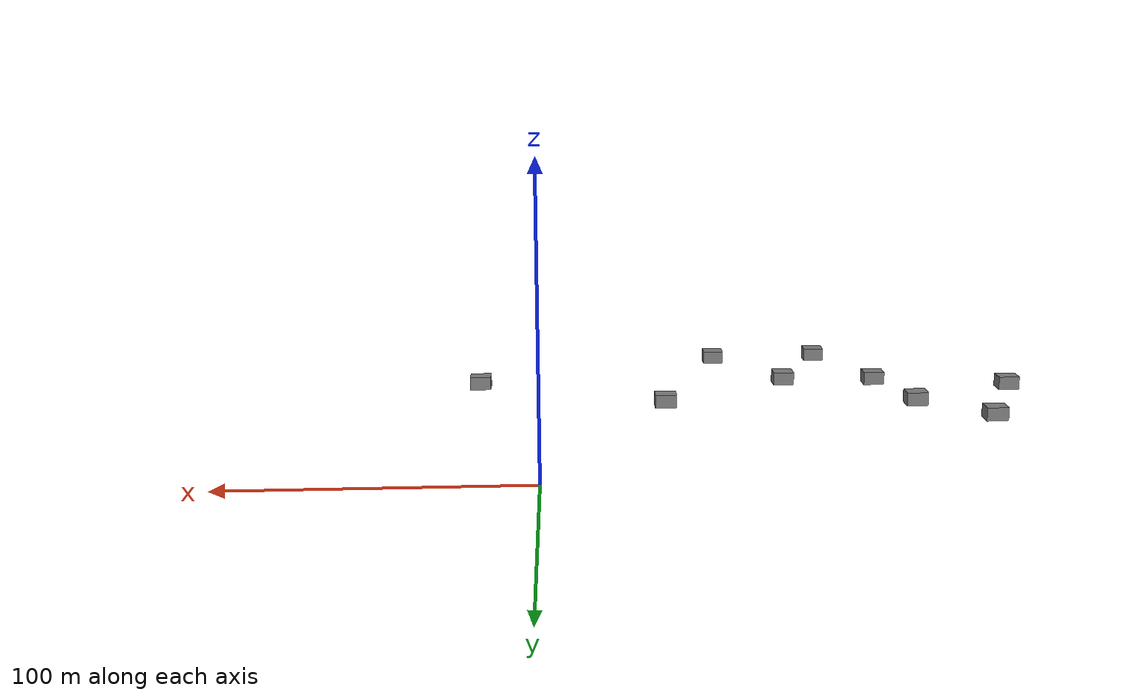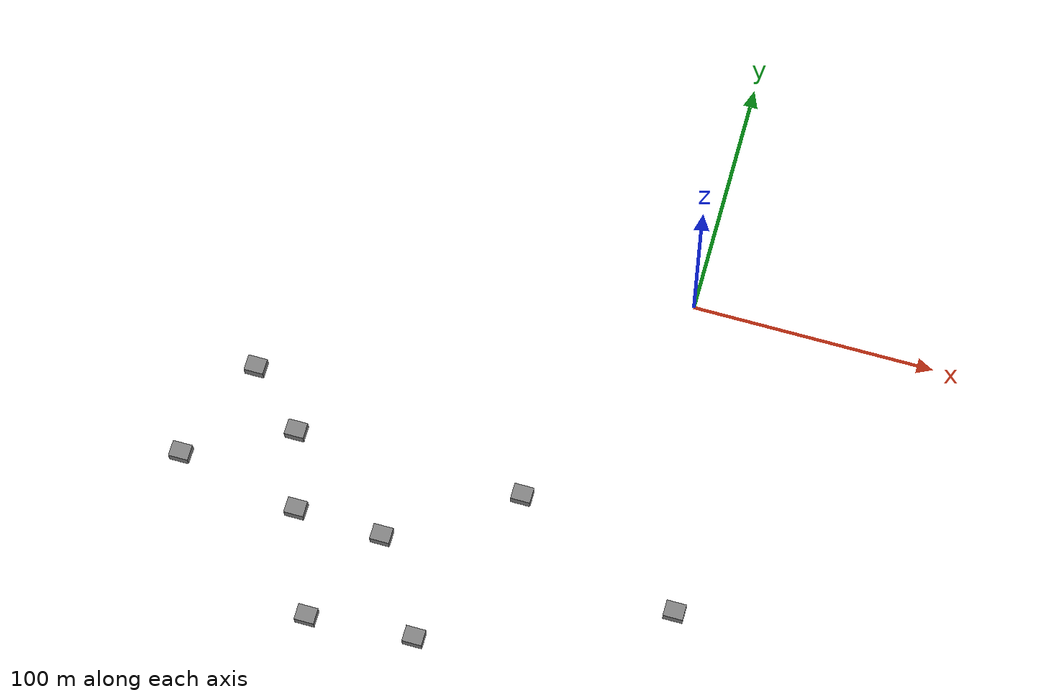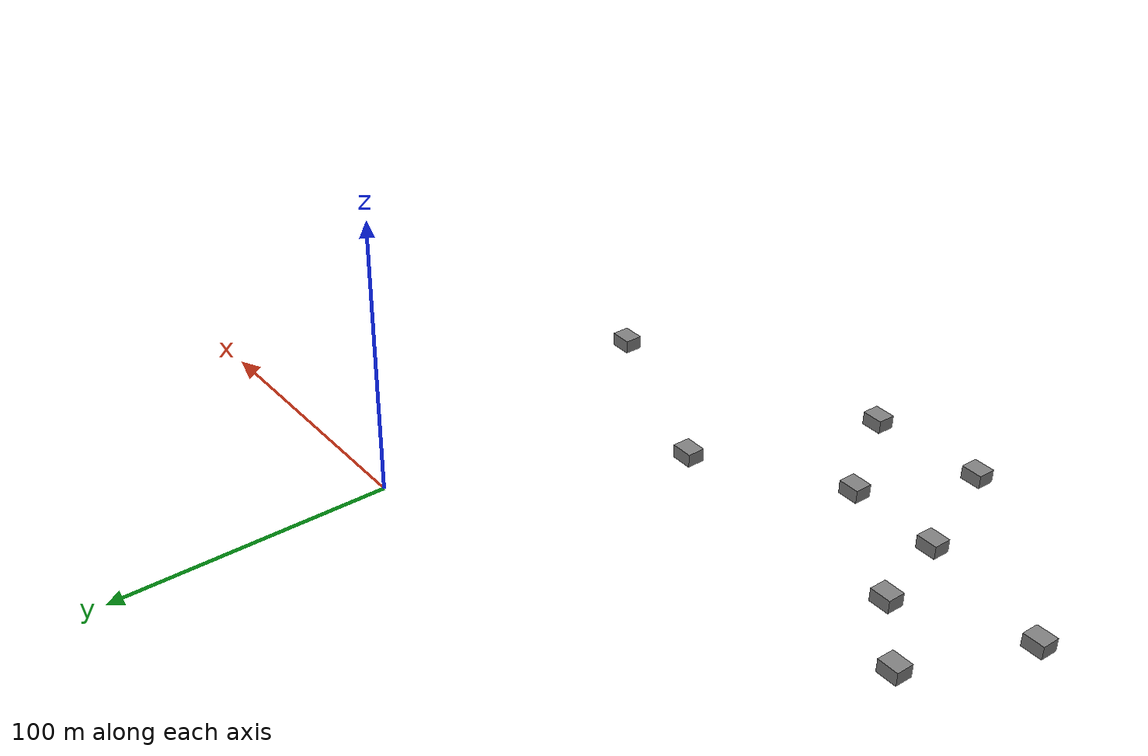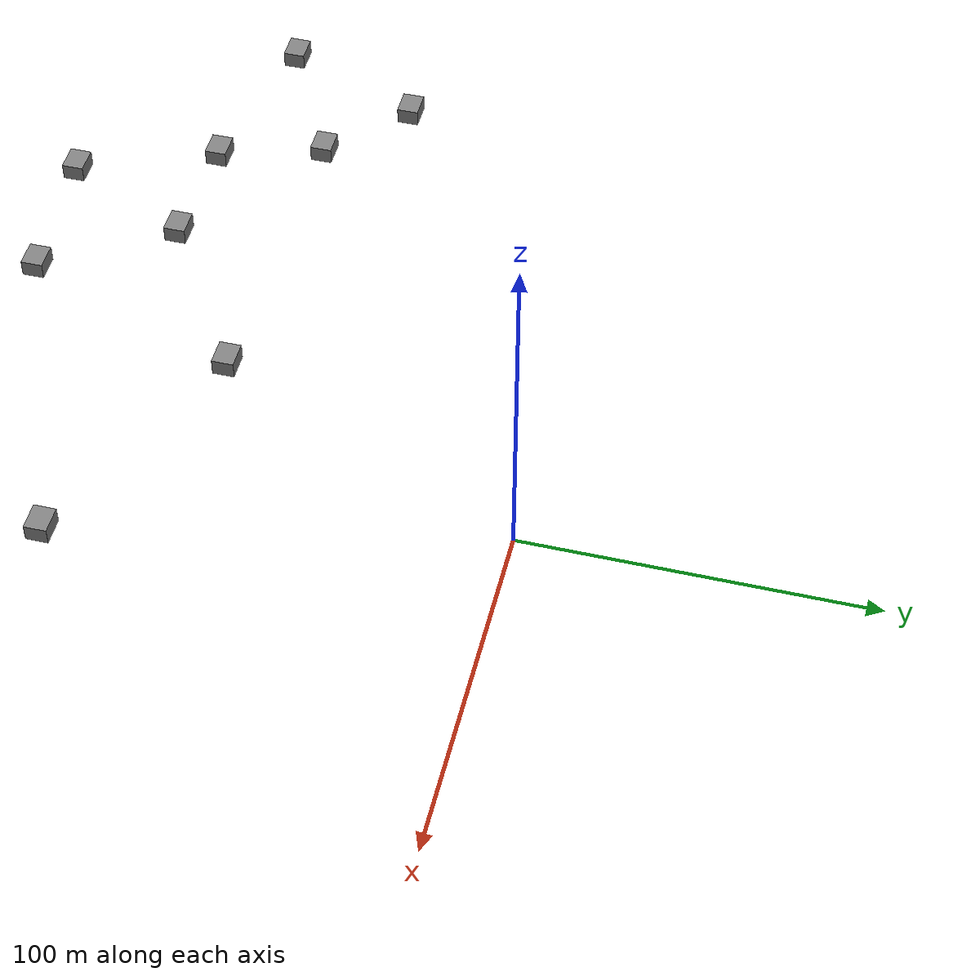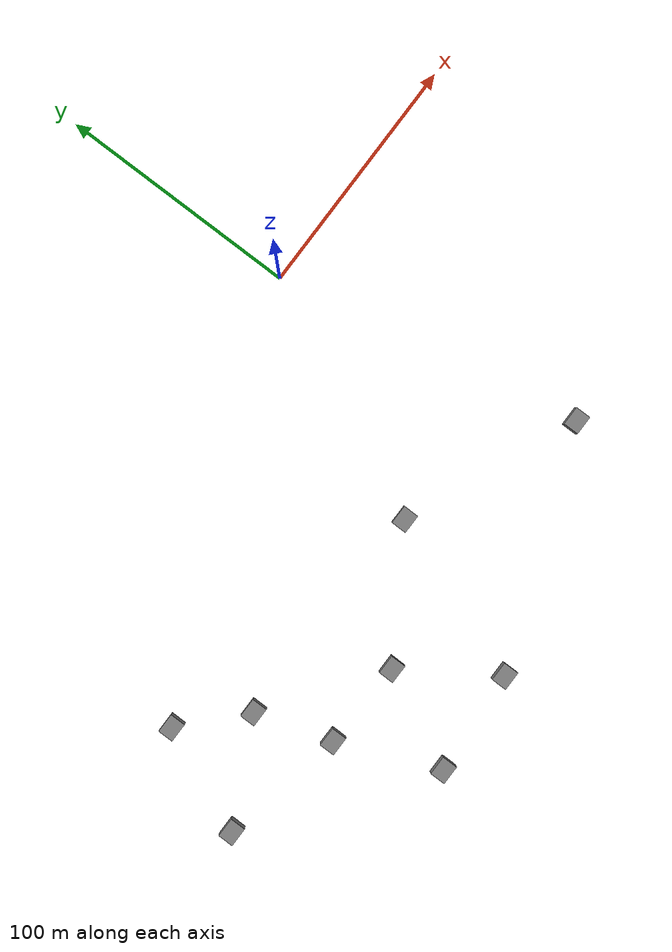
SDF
<sdf version="1.6">
 <world name="default">
  <light name="sun" type="directional">
   <pose>0 0 10 0 -0 0</pose>
   <diffuse>0.8 0.8 0.8 1</diffuse>
   <specular>0.2 0.2 0.2 1</specular>
   <attenuation>
    <range>1000</range>
    <constant>0.9</constant>
    <linear>0.01</linear>
    <quadratic>0.001</quadratic>
   </attenuation>
   <direction>-0.5 0.1 -0.9</direction>
  </light>
  <gravity>0 0 -9.8</gravity>
  <magnetic_field>6e-06 2.3e-05 -4.2e-05</magnetic_field>
  <atmosphere type="adiabatic"/>
  <physics name="default_physics" default="0" type="ode">
   <max_step_size>0.001</max_step_size>
   <real_time_factor>1</real_time_factor>
   <real_time_update_rate>1000</real_time_update_rate>
  </physics>
  <scene>
   <sky><clouds><speed>12</speed></clouds></sky>
   <origin_visual>0</origin_visual>
   <ambient>0.4 0.4 0.4 1</ambient>
   <background>0.7 0.7 0.7 1</background>
   <shadows>1</shadows>
  </scene>
  <audio><device>default</device></audio>
  <spherical_coordinates>
   <surface_model>EARTH_WGS84</surface_model>
   <latitude_deg>0</latitude_deg>
   <longitude_deg>0</longitude_deg>
   <elevation>0</elevation>
   <heading_deg>0</heading_deg>
  </spherical_coordinates>
  <model name="lago">
   <link name="link_0">
    <inertial>
     <mass>1</mass>
     <inertia>
      <ixx>0.166667</ixx>
      <ixy>0</ixy>
      <ixz>0</ixz>
      <iyy>0.166667</iyy>
      <iyz>0</iyz>
      <izz>0.166667</izz>
     </inertia>
    </inertial>
    <visual name="visual">
     <geometry><box><size>0 0 10</size></box></geometry>
     <material>
      <script>
       <uri>model://lago3/materials/scripts</uri>
       <uri>model://lago3/materials/textures</uri>
       <name>vrc/agua</name>
      </script>
     </material>
    </visual>
    <collision name="collision">
     <laser_retro>120</laser_retro>
     <geometry><box><size>0 0 10</size></box></geometry>
     <surface>
      <friction>
       <ode><mu>1</mu><mu2>1</mu2><fdir1>0 0 0</fdir1><slip1>0</slip1><slip2>0</slip2></ode>
       <torsional>
        <coefficient>1</coefficient>
        <patch_radius>0</patch_radius>
        <surface_radius>0</surface_radius>
        <use_patch_radius>1</use_patch_radius>
        <ode><slip>0</slip></ode>
       </torsional>
      </friction>
      <bounce><restitution_coefficient>0</restitution_coefficient><threshold>1e+06</threshold></bounce>
      <contact>
       <collide_without_contact>0</collide_without_contact>
       <collide_without_contact_bitmask>1</collide_without_contact_bitmask>
       <collide_bitmask>1</collide_bitmask>
       <ode>
        <soft_cfm>0</soft_cfm>
        <soft_erp>0.2</soft_erp>
        <kp>1e+13</kp>
        <kd>1</kd>
        <max_vel>0.01</max_vel>
        <min_depth>0</min_depth>
       </ode>
       <bullet>
        <split_impulse>1</split_impulse>
        <split_impulse_penetration_threshold>-0.01</split_impulse_penetration_threshold>
        <soft_cfm>0</soft_cfm>
        <soft_erp>0.2</soft_erp>
        <kp>1e+13</kp>
        <kd>1</kd>
       </bullet>
      </contact>
     </surface>
    </collision>
   </link>
   <static>1</static>
   <pose>0 0 -6.5 0 -0 0</pose>
  </model>
  <model name="camino">
   <link name="link_0">
    <pose>3.1e-05 -8e-06 0 0 -0 0</pose>
    <inertial>
     <mass>1</mass>
     <inertia>
      <ixx>0.166667</ixx>
      <ixy>0</ixy>
      <ixz>0</ixz>
      <iyy>0.166667</iyy>
      <iyz>0</iyz>
      <izz>0.166667</izz>
     </inertia>
    </inertial>
    <visual name="visual">
     <geometry><box><size>8 6.5 5</size></box></geometry>
     <material>
      <script>
       <uri>model://camino/materials/scripts</uri>
       <uri>model://camino/materials/textures</uri>
       <name>vrc/mud</name>
      </script>
      <ambient>0.5 0.5 0.5 1</ambient>
      <diffuse>0.5 0.5 0.5 1</diffuse>
      <specular>0.2 0.2 0.2 1</specular>
      <emissive>0 0 0 1</emissive>
      <shader type="vertex"><normal_map>__default__</normal_map></shader>
     </material>
    </visual>
    <collision name="collision">
     <laser_retro>170</laser_retro>
     <geometry><box><size>8 8 5</size></box></geometry>
     <surface>
      <friction>
       <ode><mu>1</mu><mu2>1</mu2><fdir1>0 0 0</fdir1><slip1>0</slip1><slip2>0</slip2></ode>
       <torsional>
        <coefficient>1</coefficient>
        <patch_radius>0</patch_radius>
        <surface_radius>0</surface_radius>
        <use_patch_radius>1</use_patch_radius>
        <ode><slip>0</slip></ode>
       </torsional>
      </friction>
      <bounce><restitution_coefficient>0</restitution_coefficient><threshold>1e+06</threshold></bounce>
      <contact>
       <collide_without_contact>0</collide_without_contact>
       <collide_without_contact_bitmask>1</collide_without_contact_bitmask>
       <collide_bitmask>1</collide_bitmask>
       <ode>
        <soft_cfm>0</soft_cfm>
        <soft_erp>0.2</soft_erp>
        <kp>1e+13</kp>
        <kd>1</kd>
        <max_vel>0.01</max_vel>
        <min_depth>0</min_depth>
       </ode>
       <bullet>
        <split_impulse>1</split_impulse>
        <split_impulse_penetration_threshold>-0.01</split_impulse_penetration_threshold>
        <soft_cfm>0</soft_cfm>
        <soft_erp>0.2</soft_erp>
        <kp>1e+13</kp>
        <kd>1</kd>
       </bullet>
      </contact>
     </surface>
    </collision>
   </link>
   <static>1</static>
   <pose>-140.254 -93.3957 0 0 -0 0</pose>
  </model>
  <model name="camino_clone">
   <link name="link_0">
    <pose>3.1e-05 -8e-06 0 0 -0 0</pose>
    <inertial>
     <mass>1</mass>
     <inertia>
      <ixx>0.166667</ixx>
      <ixy>0</ixy>
      <ixz>0</ixz>
      <iyy>0.166667</iyy>
      <iyz>0</iyz>
      <izz>0.166667</izz>
     </inertia>
    </inertial>
    <visual name="visual">
     <geometry><box><size>8 6.5 5</size></box></geometry>
     <material>
      <script>
       <uri>model://camino/materials/scripts</uri>
       <uri>model://camino/materials/textures</uri>
       <name>vrc/mud</name>
      </script>
      <ambient>0.5 0.5 0.5 1</ambient>
      <diffuse>0.5 0.5 0.5 1</diffuse>
      <specular>0.2 0.2 0.2 1</specular>
      <emissive>0 0 0 1</emissive>
      <shader type="vertex"><normal_map>__default__</normal_map></shader>
     </material>
    </visual>
    <collision name="collision">
     <laser_retro>170</laser_retro>
     <geometry><box><size>8 8 5</size></box></geometry>
     <surface>
      <friction>
       <ode><mu>1</mu><mu2>1</mu2><fdir1>0 0 0</fdir1><slip1>0</slip1><slip2>0</slip2></ode>
       <torsional>
        <coefficient>1</coefficient>
        <patch_radius>0</patch_radius>
        <surface_radius>0</surface_radius>
        <use_patch_radius>1</use_patch_radius>
        <ode><slip>0</slip></ode>
       </torsional>
      </friction>
      <bounce><restitution_coefficient>0</restitution_coefficient><threshold>1e+06</threshold></bounce>
      <contact>
       <collide_without_contact>0</collide_without_contact>
       <collide_without_contact_bitmask>1</collide_without_contact_bitmask>
       <collide_bitmask>1</collide_bitmask>
       <ode>
        <soft_cfm>0</soft_cfm>
        <soft_erp>0.2</soft_erp>
        <kp>1e+13</kp>
        <kd>1</kd>
        <max_vel>0.01</max_vel>
        <min_depth>0</min_depth>
       </ode>
       <bullet>
        <split_impulse>1</split_impulse>
        <split_impulse_penetration_threshold>-0.01</split_impulse_penetration_threshold>
        <soft_cfm>0</soft_cfm>
        <soft_erp>0.2</soft_erp>
        <kp>1e+13</kp>
        <kd>1</kd>
       </bullet>
      </contact>
     </surface>
    </collision>
   </link>
   <static>1</static>
   <pose>-163.993 -71.7457 0 0 -0 0</pose>
  </model>
  <model name="camino_clone_0">
   <link name="link_0">
    <pose>3.1e-05 -8e-06 0 0 -0 0</pose>
    <inertial>
     <mass>1</mass>
     <inertia>
      <ixx>0.166667</ixx>
      <ixy>0</ixy>
      <ixz>0</ixz>
      <iyy>0.166667</iyy>
      <iyz>0</iyz>
      <izz>0.166667</izz>
     </inertia>
    </inertial>
    <visual name="visual">
     <geometry><box><size>8 6.5 5</size></box></geometry>
     <material>
      <script>
       <uri>model://camino/materials/scripts</uri>
       <uri>model://camino/materials/textures</uri>
       <name>vrc/mud</name>
      </script>
      <ambient>0.5 0.5 0.5 1</ambient>
      <diffuse>0.5 0.5 0.5 1</diffuse>
      <specular>0.2 0.2 0.2 1</specular>
      <emissive>0 0 0 1</emissive>
      <shader type="vertex"><normal_map>__default__</normal_map></shader>
     </material>
    </visual>
    <collision name="collision">
     <laser_retro>170</laser_retro>
     <geometry><box><size>8 8 5</size></box></geometry>
     <surface>
      <friction>
       <ode><mu>1</mu><mu2>1</mu2><fdir1>0 0 0</fdir1><slip1>0</slip1><slip2>0</slip2></ode>
       <torsional>
        <coefficient>1</coefficient>
        <patch_radius>0</patch_radius>
        <surface_radius>0</surface_radius>
        <use_patch_radius>1</use_patch_radius>
        <ode><slip>0</slip></ode>
       </torsional>
      </friction>
      <bounce><restitution_coefficient>0</restitution_coefficient><threshold>1e+06</threshold></bounce>
      <contact>
       <collide_without_contact>0</collide_without_contact>
       <collide_without_contact_bitmask>1</collide_without_contact_bitmask>
       <collide_bitmask>1</collide_bitmask>
       <ode>
        <soft_cfm>0</soft_cfm>
        <soft_erp>0.2</soft_erp>
        <kp>1e+13</kp>
        <kd>1</kd>
        <max_vel>0.01</max_vel>
        <min_depth>0</min_depth>
       </ode>
       <bullet>
        <split_impulse>1</split_impulse>
        <split_impulse_penetration_threshold>-0.01</split_impulse_penetration_threshold>
        <soft_cfm>0</soft_cfm>
        <soft_erp>0.2</soft_erp>
        <kp>1e+13</kp>
        <kd>1</kd>
       </bullet>
      </contact>
     </surface>
    </collision>
   </link>
   <static>1</static>
   <pose>-181.998 -114.48 0 0 -0 0</pose>
  </model>
  <model name="camino_clone_1">
   <link name="link_0">
    <pose>3.1e-05 -8e-06 0 0 -0 0</pose>
    <inertial>
     <mass>1</mass>
     <inertia>
      <ixx>0.166667</ixx>
      <ixy>0</ixy>
      <ixz>0</ixz>
      <iyy>0.166667</iyy>
      <iyz>0</iyz>
      <izz>0.166667</izz>
     </inertia>
    </inertial>
    <visual name="visual">
     <geometry><box><size>8 6.5 5</size></box></geometry>
     <material>
      <script>
       <uri>model://camino/materials/scripts</uri>
       <uri>model://camino/materials/textures</uri>
       <name>vrc/mud</name>
      </script>
      <ambient>0.5 0.5 0.5 1</ambient>
      <diffuse>0.5 0.5 0.5 1</diffuse>
      <specular>0.2 0.2 0.2 1</specular>
      <emissive>0 0 0 1</emissive>
      <shader type="vertex"><normal_map>__default__</normal_map></shader>
     </material>
    </visual>
    <collision name="collision">
     <laser_retro>170</laser_retro>
     <geometry><box><size>8 8 5</size></box></geometry>
     <surface>
      <friction>
       <ode><mu>1</mu><mu2>1</mu2><fdir1>0 0 0</fdir1><slip1>0</slip1><slip2>0</slip2></ode>
       <torsional>
        <coefficient>1</coefficient>
        <patch_radius>0</patch_radius>
        <surface_radius>0</surface_radius>
        <use_patch_radius>1</use_patch_radius>
        <ode><slip>0</slip></ode>
       </torsional>
      </friction>
      <bounce><restitution_coefficient>0</restitution_coefficient><threshold>1e+06</threshold></bounce>
      <contact>
       <collide_without_contact>0</collide_without_contact>
       <collide_without_contact_bitmask>1</collide_without_contact_bitmask>
       <collide_bitmask>1</collide_bitmask>
       <ode>
        <soft_cfm>0</soft_cfm>
        <soft_erp>0.2</soft_erp>
        <kp>1e+13</kp>
        <kd>1</kd>
        <max_vel>0.01</max_vel>
        <min_depth>0</min_depth>
       </ode>
       <bullet>
        <split_impulse>1</split_impulse>
        <split_impulse_penetration_threshold>-0.01</split_impulse_penetration_threshold>
        <soft_cfm>0</soft_cfm>
        <soft_erp>0.2</soft_erp>
        <kp>1e+13</kp>
        <kd>1</kd>
       </bullet>
      </contact>
     </surface>
    </collision>
   </link>
   <static>1</static>
   <pose>-130.633 -124.618 0 0 -0 0</pose>
  </model>
  <model name="camino_clone_1_clone">
   <link name="link_0">
    <pose>3.1e-05 -8e-06 0 0 -0 0</pose>
    <inertial>
     <mass>1</mass>
     <inertia>
      <ixx>0.166667</ixx>
      <ixy>0</ixy>
      <ixz>0</ixz>
      <iyy>0.166667</iyy>
      <iyz>0</iyz>
      <izz>0.166667</izz>
     </inertia>
    </inertial>
    <visual name="visual">
     <geometry><box><size>8 6.5 5</size></box></geometry>
     <material>
      <script>
       <uri>model://camino/materials/scripts</uri>
       <uri>model://camino/materials/textures</uri>
       <name>vrc/mud</name>
      </script>
      <ambient>0.5 0.5 0.5 1</ambient>
      <diffuse>0.5 0.5 0.5 1</diffuse>
      <specular>0.2 0.2 0.2 1</specular>
      <emissive>0 0 0 1</emissive>
      <shader type="vertex"><normal_map>__default__</normal_map></shader>
     </material>
    </visual>
    <collision name="collision">
     <laser_retro>170</laser_retro>
     <geometry><box><size>8 8 5</size></box></geometry>
     <surface>
      <friction>
       <ode><mu>1</mu><mu2>1</mu2><fdir1>0 0 0</fdir1><slip1>0</slip1><slip2>0</slip2></ode>
       <torsional>
        <coefficient>1</coefficient>
        <patch_radius>0</patch_radius>
        <surface_radius>0</surface_radius>
        <use_patch_radius>1</use_patch_radius>
        <ode><slip>0</slip></ode>
       </torsional>
      </friction>
      <bounce><restitution_coefficient>0</restitution_coefficient><threshold>1e+06</threshold></bounce>
      <contact>
       <collide_without_contact>0</collide_without_contact>
       <collide_without_contact_bitmask>1</collide_without_contact_bitmask>
       <collide_bitmask>1</collide_bitmask>
       <ode>
        <soft_cfm>0</soft_cfm>
        <soft_erp>0.2</soft_erp>
        <kp>1e+13</kp>
        <kd>1</kd>
        <max_vel>0.01</max_vel>
        <min_depth>0</min_depth>
       </ode>
       <bullet>
        <split_impulse>1</split_impulse>
        <split_impulse_penetration_threshold>-0.01</split_impulse_penetration_threshold>
        <soft_cfm>0</soft_cfm>
        <soft_erp>0.2</soft_erp>
        <kp>1e+13</kp>
        <kd>1</kd>
       </bullet>
      </contact>
     </surface>
    </collision>
   </link>
   <static>1</static>
   <pose>-94.6367 -126.041 0 0 -0 0</pose>
  </model>
  <model name="camino_clone_1_clone_clone">
   <link name="link_0">
    <pose>3.1e-05 -8e-06 0 0 -0 0</pose>
    <inertial>
     <mass>1</mass>
     <inertia>
      <ixx>0.166667</ixx>
      <ixy>0</ixy>
      <ixz>0</ixz>
      <iyy>0.166667</iyy>
      <iyz>0</iyz>
      <izz>0.166667</izz>
     </inertia>
    </inertial>
    <visual name="visual">
     <geometry><box><size>8 6.5 5</size></box></geometry>
     <material>
      <script>
       <uri>model://camino/materials/scripts</uri>
       <uri>model://camino/materials/textures</uri>
       <name>vrc/mud</name>
      </script>
      <ambient>0.5 0.5 0.5 1</ambient>
      <diffuse>0.5 0.5 0.5 1</diffuse>
      <specular>0.2 0.2 0.2 1</specular>
      <emissive>0 0 0 1</emissive>
      <shader type="vertex"><normal_map>__default__</normal_map></shader>
     </material>
    </visual>
    <collision name="collision">
     <laser_retro>170</laser_retro>
     <geometry><box><size>8 8 5</size></box></geometry>
     <surface>
      <friction>
       <ode><mu>1</mu><mu2>1</mu2><fdir1>0 0 0</fdir1><slip1>0</slip1><slip2>0</slip2></ode>
       <torsional>
        <coefficient>1</coefficient>
        <patch_radius>0</patch_radius>
        <surface_radius>0</surface_radius>
        <use_patch_radius>1</use_patch_radius>
        <ode><slip>0</slip></ode>
       </torsional>
      </friction>
      <bounce><restitution_coefficient>0</restitution_coefficient><threshold>1e+06</threshold></bounce>
      <contact>
       <collide_without_contact>0</collide_without_contact>
       <collide_without_contact_bitmask>1</collide_without_contact_bitmask>
       <collide_bitmask>1</collide_bitmask>
       <ode>
        <soft_cfm>0</soft_cfm>
        <soft_erp>0.2</soft_erp>
        <kp>1e+13</kp>
        <kd>1</kd>
        <max_vel>0.01</max_vel>
        <min_depth>0</min_depth>
       </ode>
       <bullet>
        <split_impulse>1</split_impulse>
        <split_impulse_penetration_threshold>-0.01</split_impulse_penetration_threshold>
        <soft_cfm>0</soft_cfm>
        <soft_erp>0.2</soft_erp>
        <kp>1e+13</kp>
        <kd>1</kd>
       </bullet>
      </contact>
     </surface>
    </collision>
   </link>
   <static>1</static>
   <pose>25.2399 -125.21 0 0 -0 0</pose>
  </model>
  <model name="camino_clone_1_clone_clone_0">
   <link name="link_0">
    <pose>3.1e-05 -8e-06 0 0 -0 0</pose>
    <inertial>
     <mass>1</mass>
     <inertia>
      <ixx>0.166667</ixx>
      <ixy>0</ixy>
      <ixz>0</ixz>
      <iyy>0.166667</iyy>
      <iyz>0</iyz>
      <izz>0.166667</izz>
     </inertia>
    </inertial>
    <visual name="visual">
     <geometry><box><size>8 6.5 5</size></box></geometry>
     <material>
      <script>
       <uri>model://camino/materials/scripts</uri>
       <uri>model://camino/materials/textures</uri>
       <name>vrc/mud</name>
      </script>
      <ambient>0.5 0.5 0.5 1</ambient>
      <diffuse>0.5 0.5 0.5 1</diffuse>
      <specular>0.2 0.2 0.2 1</specular>
      <emissive>0 0 0 1</emissive>
      <shader type="vertex"><normal_map>__default__</normal_map></shader>
     </material>
    </visual>
    <collision name="collision">
     <laser_retro>170</laser_retro>
     <geometry><box><size>8 8 5</size></box></geometry>
     <surface>
      <friction>
       <ode><mu>1</mu><mu2>1</mu2><fdir1>0 0 0</fdir1><slip1>0</slip1><slip2>0</slip2></ode>
       <torsional>
        <coefficient>1</coefficient>
        <patch_radius>0</patch_radius>
        <surface_radius>0</surface_radius>
        <use_patch_radius>1</use_patch_radius>
        <ode><slip>0</slip></ode>
       </torsional>
      </friction>
      <bounce><restitution_coefficient>0</restitution_coefficient><threshold>1e+06</threshold></bounce>
      <contact>
       <collide_without_contact>0</collide_without_contact>
       <collide_without_contact_bitmask>1</collide_without_contact_bitmask>
       <collide_bitmask>1</collide_bitmask>
       <ode>
        <soft_cfm>0</soft_cfm>
        <soft_erp>0.2</soft_erp>
        <kp>1e+13</kp>
        <kd>1</kd>
        <max_vel>0.01</max_vel>
        <min_depth>0</min_depth>
       </ode>
       <bullet>
        <split_impulse>1</split_impulse>
        <split_impulse_penetration_threshold>-0.01</split_impulse_penetration_threshold>
        <soft_cfm>0</soft_cfm>
        <soft_erp>0.2</soft_erp>
        <kp>1e+13</kp>
        <kd>1</kd>
       </bullet>
      </contact>
     </surface>
    </collision>
   </link>
   <static>1</static>
   <pose>-45.4701 -95.0896 0 0 -0 0</pose>
  </model>
  <model name="camino_clone_1_clone_clone_1">
   <link name="link_0">
    <pose>3.1e-05 -8e-06 0 0 -0 0</pose>
    <inertial>
     <mass>1</mass>
     <inertia>
      <ixx>0.166667</ixx>
      <ixy>0</ixy>
      <ixz>0</ixz>
      <iyy>0.166667</iyy>
      <iyz>0</iyz>
      <izz>0.166667</izz>
     </inertia>
    </inertial>
    <visual name="visual">
     <geometry><box><size>8 6.5 5</size></box></geometry>
     <material>
      <script>
       <uri>model://camino/materials/scripts</uri>
       <uri>model://camino/materials/textures</uri>
       <name>vrc/mud</name>
      </script>
      <ambient>0.5 0.5 0.5 1</ambient>
      <diffuse>0.5 0.5 0.5 1</diffuse>
      <specular>0.2 0.2 0.2 1</specular>
      <emissive>0 0 0 1</emissive>
      <shader type="vertex"><normal_map>__default__</normal_map></shader>
     </material>
    </visual>
    <collision name="collision">
     <laser_retro>170</laser_retro>
     <geometry><box><size>8 8 5</size></box></geometry>
     <surface>
      <friction>
       <ode><mu>1</mu><mu2>1</mu2><fdir1>0 0 0</fdir1><slip1>0</slip1><slip2>0</slip2></ode>
       <torsional>
        <coefficient>1</coefficient>
        <patch_radius>0</patch_radius>
        <surface_radius>0</surface_radius>
        <use_patch_radius>1</use_patch_radius>
        <ode><slip>0</slip></ode>
       </torsional>
      </friction>
      <bounce><restitution_coefficient>0</restitution_coefficient><threshold>1e+06</threshold></bounce>
      <contact>
       <collide_without_contact>0</collide_without_contact>
       <collide_without_contact_bitmask>1</collide_without_contact_bitmask>
       <collide_bitmask>1</collide_bitmask>
       <ode>
        <soft_cfm>0</soft_cfm>
        <soft_erp>0.2</soft_erp>
        <kp>1e+13</kp>
        <kd>1</kd>
        <max_vel>0.01</max_vel>
        <min_depth>0</min_depth>
       </ode>
       <bullet>
        <split_impulse>1</split_impulse>
        <split_impulse_penetration_threshold>-0.01</split_impulse_penetration_threshold>
        <soft_cfm>0</soft_cfm>
        <soft_erp>0.2</soft_erp>
        <kp>1e+13</kp>
        <kd>1</kd>
       </bullet>
      </contact>
     </surface>
    </collision>
   </link>
   <static>1</static>
   <pose>-113.665 -165.323 0 0 -0 0</pose>
  </model>
  <model name="camino_clone_1_clone_clone_2">
   <link name="link_0">
    <pose>3.1e-05 -8e-06 0 0 -0 0</pose>
    <inertial>
     <mass>1</mass>
     <inertia>
      <ixx>0.166667</ixx>
      <ixy>0</ixy>
      <ixz>0</ixz>
      <iyy>0.166667</iyy>
      <iyz>0</iyz>
      <izz>0.166667</izz>
     </inertia>
    </inertial>
    <visual name="visual">
     <geometry><box><size>8 6.5 5</size></box></geometry>
     <material>
      <script>
       <uri>model://camino/materials/scripts</uri>
       <uri>model://camino/materials/textures</uri>
       <name>vrc/mud</name>
      </script>
      <ambient>0.5 0.5 0.5 1</ambient>
      <diffuse>0.5 0.5 0.5 1</diffuse>
      <specular>0.2 0.2 0.2 1</specular>
      <emissive>0 0 0 1</emissive>
      <shader type="vertex"><normal_map>__default__</normal_map></shader>
     </material>
    </visual>
    <collision name="collision">
     <laser_retro>170</laser_retro>
     <geometry><box><size>8 8 5</size></box></geometry>
     <surface>
      <friction>
       <ode><mu>1</mu><mu2>1</mu2><fdir1>0 0 0</fdir1><slip1>0</slip1><slip2>0</slip2></ode>
       <torsional>
        <coefficient>1</coefficient>
        <patch_radius>0</patch_radius>
        <surface_radius>0</surface_radius>
        <use_patch_radius>1</use_patch_radius>
        <ode><slip>0</slip></ode>
       </torsional>
      </friction>
      <bounce><restitution_coefficient>0</restitution_coefficient><threshold>1e+06</threshold></bounce>
      <contact>
       <collide_without_contact>0</collide_without_contact>
       <collide_without_contact_bitmask>1</collide_without_contact_bitmask>
       <collide_bitmask>1</collide_bitmask>
       <ode>
        <soft_cfm>0</soft_cfm>
        <soft_erp>0.2</soft_erp>
        <kp>1e+13</kp>
        <kd>1</kd>
        <max_vel>0.01</max_vel>
        <min_depth>0</min_depth>
       </ode>
       <bullet>
        <split_impulse>1</split_impulse>
        <split_impulse_penetration_threshold>-0.01</split_impulse_penetration_threshold>
        <soft_cfm>0</soft_cfm>
        <soft_erp>0.2</soft_erp>
        <kp>1e+13</kp>
        <kd>1</kd>
       </bullet>
      </contact>
     </surface>
    </collision>
   </link>
   <static>1</static>
   <pose>-70.4486 -162.414 0 0 -0 0</pose>
  </model>
 </world>
</sdf>
